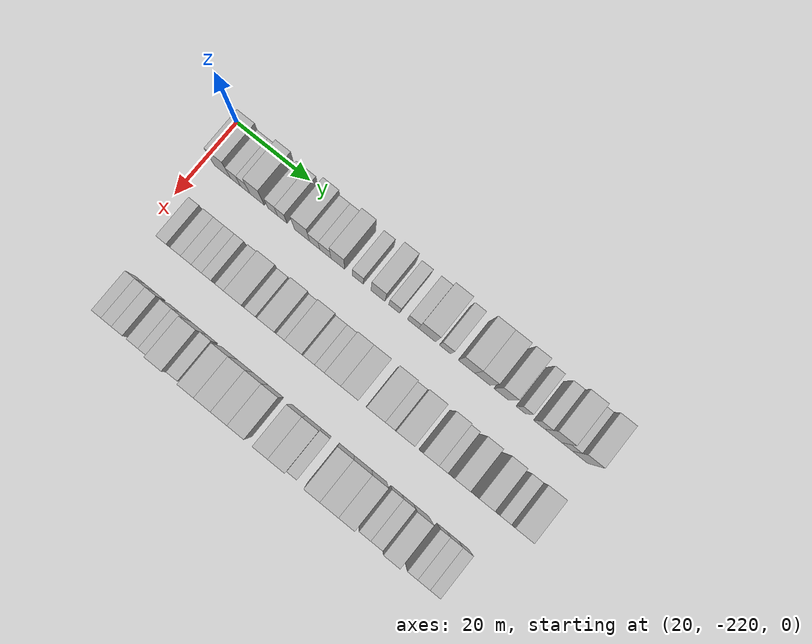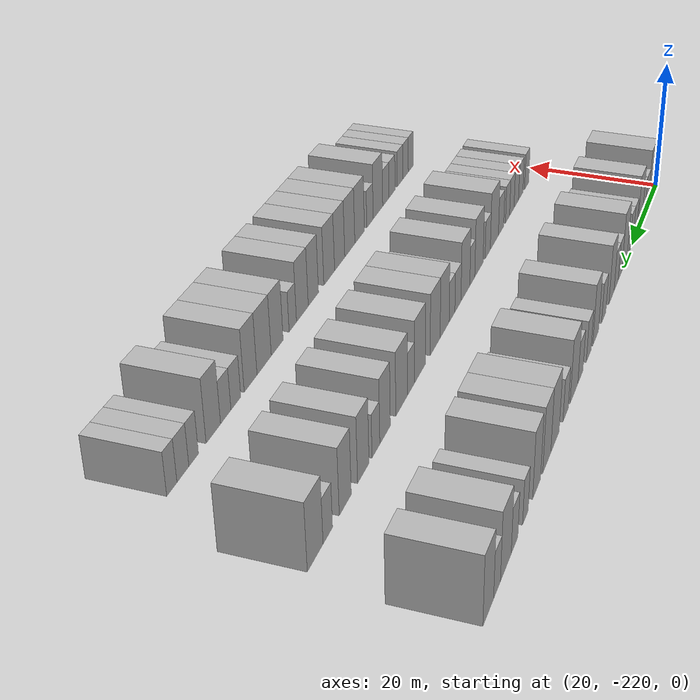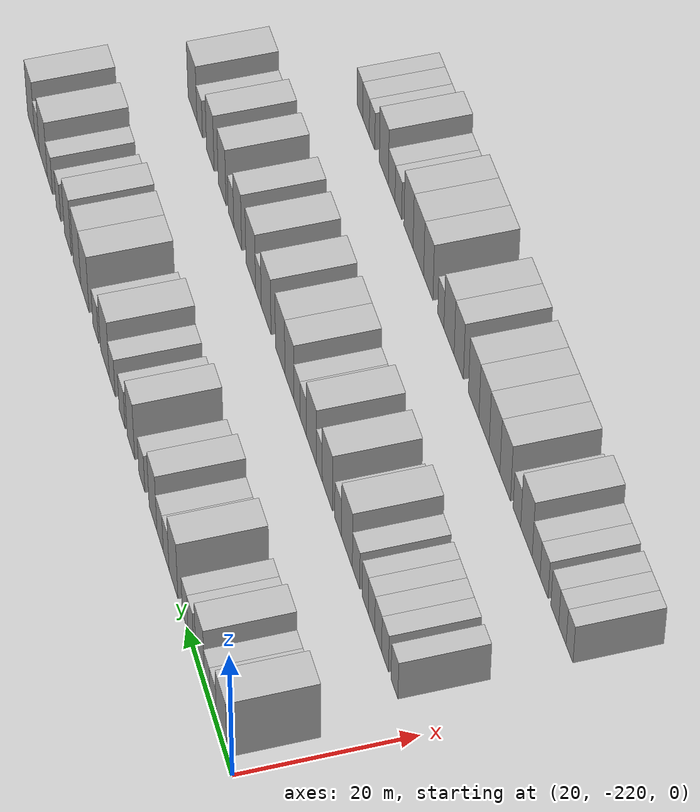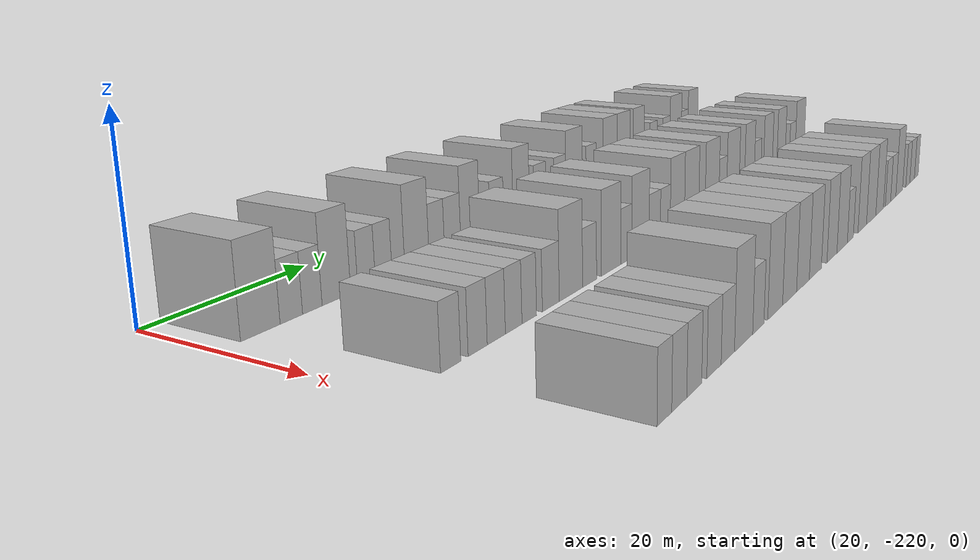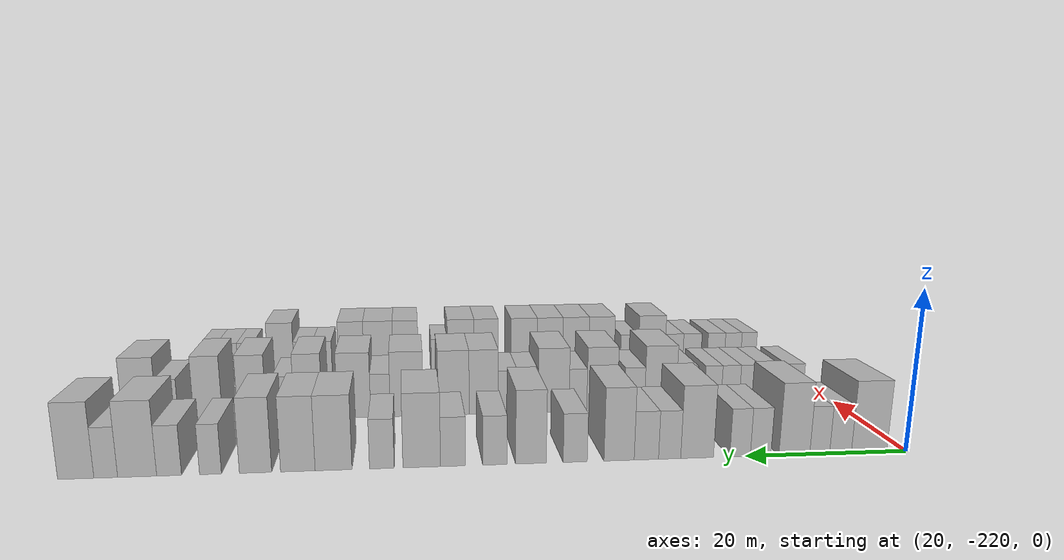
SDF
<sdf version="1.6">
 <world name="default">
  <model name="building_36">
   <static>1</static>
   <pose>25.0000 -215.3749 0 0.000000 0.000000 0.000000</pose>
   <link name="link">
    <pose>0 0 4.50 0 0 0</pose>
    <collision name="collision"><geometry><box><size>10.0000 4.4732 9.0000</size></box></geometry></collision>
    <visual name="visual">
     <cast_shadows>0</cast_shadows>
     <geometry><box><size>10.0000 4.4732 9.0000</size></box></geometry>
     <material>
      <script>
       <uri>model://HANNAS_wall/materials/scripts</uri>
       <uri>model://HANNAS_wall/materials/textures</uri>
       <name>vrc/HANNAS_wall</name>
      </script>
     </material>
    </visual>
   </link>
  </model>
  <model name="building_37">
   <static>1</static>
   <pose>25.0000 -211.7772 0 0.000000 0.000000 0.000000</pose>
   <link name="link">
    <pose>0 0 3.00 0 0 0</pose>
    <collision name="collision"><geometry><box><size>10.0000 2.7222 6.0000</size></box></geometry></collision>
    <visual name="visual">
     <cast_shadows>0</cast_shadows>
     <geometry><box><size>10.0000 2.7222 6.0000</size></box></geometry>
     <material>
      <script>
       <uri>model://HANNAS_wall/materials/scripts</uri>
       <uri>model://HANNAS_wall/materials/textures</uri>
       <name>vrc/HANNAS_wall</name>
      </script>
     </material>
    </visual>
   </link>
  </model>
  <model name="building_38">
   <static>1</static>
   <pose>25.0000 -209.1756 0 0.000000 0.000000 0.000000</pose>
   <link name="link">
    <pose>0 0 3.00 0 0 0</pose>
    <collision name="collision"><geometry><box><size>10.0000 2.4810 6.0000</size></box></geometry></collision>
    <visual name="visual">
     <cast_shadows>0</cast_shadows>
     <geometry><box><size>10.0000 2.4810 6.0000</size></box></geometry>
     <material>
      <script>
       <uri>model://HANNAS_wall/materials/scripts</uri>
       <uri>model://HANNAS_wall/materials/textures</uri>
       <name>vrc/HANNAS_wall</name>
      </script>
     </material>
    </visual>
   </link>
  </model>
  <model name="building_39">
   <static>1</static>
   <pose>25.0000 -206.0133 0 0.000000 0.000000 0.000000</pose>
   <link name="link">
    <pose>0 0 4.50 0 0 0</pose>
    <collision name="collision"><geometry><box><size>10.0000 3.8437 9.0000</size></box></geometry></collision>
    <visual name="visual">
     <cast_shadows>0</cast_shadows>
     <geometry><box><size>10.0000 3.8437 9.0000</size></box></geometry>
     <material>
      <script>
       <uri>model://HANNAS_wall/materials/scripts</uri>
       <uri>model://HANNAS_wall/materials/textures</uri>
       <name>vrc/HANNAS_wall</name>
      </script>
     </material>
    </visual>
   </link>
  </model>
  <model name="building_40">
   <static>1</static>
   <pose>25.0000 -201.8204 0 0.000000 0.000000 0.000000</pose>
   <link name="link">
    <pose>0 0 3.00 0 0 0</pose>
    <collision name="collision"><geometry><box><size>10.0000 2.5420 6.0000</size></box></geometry></collision>
    <visual name="visual">
     <cast_shadows>0</cast_shadows>
     <geometry><box><size>10.0000 2.5420 6.0000</size></box></geometry>
     <material>
      <script>
       <uri>model://HANNAS_wall/materials/scripts</uri>
       <uri>model://HANNAS_wall/materials/textures</uri>
       <name>vrc/HANNAS_wall</name>
      </script>
     </material>
    </visual>
   </link>
  </model>
  <model name="building_41">
   <static>1</static>
   <pose>25.0000 -199.2871 0 0.000000 0.000000 0.000000</pose>
   <link name="link">
    <pose>0 0 3.00 0 0 0</pose>
    <collision name="collision"><geometry><box><size>10.0000 2.5247 6.0000</size></box></geometry></collision>
    <visual name="visual">
     <cast_shadows>0</cast_shadows>
     <geometry><box><size>10.0000 2.5247 6.0000</size></box></geometry>
     <material>
      <script>
       <uri>model://HANNAS_wall/materials/scripts</uri>
       <uri>model://HANNAS_wall/materials/textures</uri>
       <name>vrc/HANNAS_wall</name>
      </script>
     </material>
    </visual>
   </link>
  </model>
  <model name="building_42">
   <static>1</static>
   <pose>25.0000 -194.0223 0 0.000000 0.000000 0.000000</pose>
   <link name="link">
    <pose>0 0 4.50 0 0 0</pose>
    <collision name="collision"><geometry><box><size>10.0000 4.0050 9.0000</size></box></geometry></collision>
    <visual name="visual">
     <cast_shadows>0</cast_shadows>
     <geometry><box><size>10.0000 4.0050 9.0000</size></box></geometry>
     <material>
      <script>
       <uri>model://HANNAS_wall/materials/scripts</uri>
       <uri>model://HANNAS_wall/materials/textures</uri>
       <name>vrc/HANNAS_wall</name>
      </script>
     </material>
    </visual>
   </link>
  </model>
  <model name="building_43">
   <static>1</static>
   <pose>25.0000 -190.6748 0 0.000000 0.000000 0.000000</pose>
   <link name="link">
    <pose>0 0 3.00 0 0 0</pose>
    <collision name="collision"><geometry><box><size>10.0000 2.6900 6.0000</size></box></geometry></collision>
    <visual name="visual">
     <cast_shadows>0</cast_shadows>
     <geometry><box><size>10.0000 2.6900 6.0000</size></box></geometry>
     <material>
      <script>
       <uri>model://HANNAS_wall/materials/scripts</uri>
       <uri>model://HANNAS_wall/materials/textures</uri>
       <name>vrc/HANNAS_wall</name>
      </script>
     </material>
    </visual>
   </link>
  </model>
  <model name="building_44">
   <static>1</static>
   <pose>25.0000 -187.8573 0 0.000000 0.000000 0.000000</pose>
   <link name="link">
    <pose>0 0 3.00 0 0 0</pose>
    <collision name="collision"><geometry><box><size>10.0000 2.9449 6.0000</size></box></geometry></collision>
    <visual name="visual">
     <cast_shadows>0</cast_shadows>
     <geometry><box><size>10.0000 2.9449 6.0000</size></box></geometry>
     <material>
      <script>
       <uri>model://HANNAS_wall/materials/scripts</uri>
       <uri>model://HANNAS_wall/materials/textures</uri>
       <name>vrc/HANNAS_wall</name>
      </script>
     </material>
    </visual>
   </link>
  </model>
  <model name="building_45">
   <static>1</static>
   <pose>25.0000 -184.5670 0 0.000000 0.000000 0.000000</pose>
   <link name="link">
    <pose>0 0 4.50 0 0 0</pose>
    <collision name="collision"><geometry><box><size>10.0000 3.6356 9.0000</size></box></geometry></collision>
    <visual name="visual">
     <cast_shadows>0</cast_shadows>
     <geometry><box><size>10.0000 3.6356 9.0000</size></box></geometry>
     <material>
      <script>
       <uri>model://HANNAS_wall/materials/scripts</uri>
       <uri>model://HANNAS_wall/materials/textures</uri>
       <name>vrc/HANNAS_wall</name>
      </script>
     </material>
    </visual>
   </link>
  </model>
  <model name="building_46">
   <static>1</static>
   <pose>25.0000 -179.3126 0 0.000000 0.000000 0.000000</pose>
   <link name="link">
    <pose>0 0 3.00 0 0 0</pose>
    <collision name="collision"><geometry><box><size>10.0000 2.8732 6.0000</size></box></geometry></collision>
    <visual name="visual">
     <cast_shadows>0</cast_shadows>
     <geometry><box><size>10.0000 2.8732 6.0000</size></box></geometry>
     <material>
      <script>
       <uri>model://HANNAS_wall/materials/scripts</uri>
       <uri>model://HANNAS_wall/materials/textures</uri>
       <name>vrc/HANNAS_wall</name>
      </script>
     </material>
    </visual>
   </link>
  </model>
  <model name="building_47">
   <static>1</static>
   <pose>25.0000 -174.0572 0 0.000000 0.000000 0.000000</pose>
   <link name="link">
    <pose>0 0 4.50 0 0 0</pose>
    <collision name="collision"><geometry><box><size>10.0000 3.6375 9.0000</size></box></geometry></collision>
    <visual name="visual">
     <cast_shadows>0</cast_shadows>
     <geometry><box><size>10.0000 3.6375 9.0000</size></box></geometry>
     <material>
      <script>
       <uri>model://HANNAS_wall/materials/scripts</uri>
       <uri>model://HANNAS_wall/materials/textures</uri>
       <name>vrc/HANNAS_wall</name>
      </script>
     </material>
    </visual>
   </link>
  </model>
  <model name="building_48">
   <static>1</static>
   <pose>25.0000 -169.8067 0 0.000000 0.000000 0.000000</pose>
   <link name="link">
    <pose>0 0 3.00 0 0 0</pose>
    <collision name="collision"><geometry><box><size>10.0000 2.8636 6.0000</size></box></geometry></collision>
    <visual name="visual">
     <cast_shadows>0</cast_shadows>
     <geometry><box><size>10.0000 2.8636 6.0000</size></box></geometry>
     <material>
      <script>
       <uri>model://HANNAS_wall/materials/scripts</uri>
       <uri>model://HANNAS_wall/materials/textures</uri>
       <name>vrc/HANNAS_wall</name>
      </script>
     </material>
    </visual>
   </link>
  </model>
  <model name="building_49">
   <static>1</static>
   <pose>25.0000 -164.9101 0 0.000000 0.000000 0.000000</pose>
   <link name="link">
    <pose>0 0 3.00 0 0 0</pose>
    <collision name="collision"><geometry><box><size>10.0000 2.9296 6.0000</size></box></geometry></collision>
    <visual name="visual">
     <cast_shadows>0</cast_shadows>
     <geometry><box><size>10.0000 2.9296 6.0000</size></box></geometry>
     <material>
      <script>
       <uri>model://HANNAS_wall/materials/scripts</uri>
       <uri>model://HANNAS_wall/materials/textures</uri>
       <name>vrc/HANNAS_wall</name>
      </script>
     </material>
    </visual>
   </link>
  </model>
  <model name="building_50">
   <static>1</static>
   <pose>25.0000 -161.2648 0 0.000000 0.000000 0.000000</pose>
   <link name="link">
    <pose>0 0 4.50 0 0 0</pose>
    <collision name="collision"><geometry><box><size>10.0000 4.3609 9.0000</size></box></geometry></collision>
    <visual name="visual">
     <cast_shadows>0</cast_shadows>
     <geometry><box><size>10.0000 4.3609 9.0000</size></box></geometry>
     <material>
      <script>
       <uri>model://HANNAS_wall/materials/scripts</uri>
       <uri>model://HANNAS_wall/materials/textures</uri>
       <name>vrc/HANNAS_wall</name>
      </script>
     </material>
    </visual>
   </link>
  </model>
  <model name="building_51">
   <static>1</static>
   <pose>25.0000 -156.6595 0 0.000000 0.000000 0.000000</pose>
   <link name="link">
    <pose>0 0 3.00 0 0 0</pose>
    <collision name="collision"><geometry><box><size>10.0000 2.8498 6.0000</size></box></geometry></collision>
    <visual name="visual">
     <cast_shadows>0</cast_shadows>
     <geometry><box><size>10.0000 2.8498 6.0000</size></box></geometry>
     <material>
      <script>
       <uri>model://HANNAS_wall/materials/scripts</uri>
       <uri>model://HANNAS_wall/materials/textures</uri>
       <name>vrc/HANNAS_wall</name>
      </script>
     </material>
    </visual>
   </link>
  </model>
  <model name="building_52">
   <static>1</static>
   <pose>25.0000 -151.1320 0 0.000000 0.000000 0.000000</pose>
   <link name="link">
    <pose>0 0 4.50 0 0 0</pose>
    <collision name="collision"><geometry><box><size>10.0000 4.2051 9.0000</size></box></geometry></collision>
    <visual name="visual">
     <cast_shadows>0</cast_shadows>
     <geometry><box><size>10.0000 4.2051 9.0000</size></box></geometry>
     <material>
      <script>
       <uri>model://HANNAS_wall/materials/scripts</uri>
       <uri>model://HANNAS_wall/materials/textures</uri>
       <name>vrc/HANNAS_wall</name>
      </script>
     </material>
    </visual>
   </link>
  </model>
  <model name="building_53">
   <static>1</static>
   <pose>25.0000 -147.0693 0 0.000000 0.000000 0.000000</pose>
   <link name="link">
    <pose>0 0 4.50 0 0 0</pose>
    <collision name="collision"><geometry><box><size>10.0000 3.9203 9.0000</size></box></geometry></collision>
    <visual name="visual">
     <cast_shadows>0</cast_shadows>
     <geometry><box><size>10.0000 3.9203 9.0000</size></box></geometry>
     <material>
      <script>
       <uri>model://HANNAS_wall/materials/scripts</uri>
       <uri>model://HANNAS_wall/materials/textures</uri>
       <name>vrc/HANNAS_wall</name>
      </script>
     </material>
    </visual>
   </link>
  </model>
  <model name="building_54">
   <static>1</static>
   <pose>25.0000 -142.2915 0 0.000000 0.000000 0.000000</pose>
   <link name="link">
    <pose>0 0 4.50 0 0 0</pose>
    <collision name="collision"><geometry><box><size>10.0000 3.6353 9.0000</size></box></geometry></collision>
    <visual name="visual">
     <cast_shadows>0</cast_shadows>
     <geometry><box><size>10.0000 3.6353 9.0000</size></box></geometry>
     <material>
      <script>
       <uri>model://HANNAS_wall/materials/scripts</uri>
       <uri>model://HANNAS_wall/materials/textures</uri>
       <name>vrc/HANNAS_wall</name>
      </script>
     </material>
    </visual>
   </link>
  </model>
  <model name="building_55">
   <static>1</static>
   <pose>25.0000 -137.2523 0 0.000000 0.000000 0.000000</pose>
   <link name="link">
    <pose>0 0 3.00 0 0 0</pose>
    <collision name="collision"><geometry><box><size>10.0000 2.4430 6.0000</size></box></geometry></collision>
    <visual name="visual">
     <cast_shadows>0</cast_shadows>
     <geometry><box><size>10.0000 2.4430 6.0000</size></box></geometry>
     <material>
      <script>
       <uri>model://HANNAS_wall/materials/scripts</uri>
       <uri>model://HANNAS_wall/materials/textures</uri>
       <name>vrc/HANNAS_wall</name>
      </script>
     </material>
    </visual>
   </link>
  </model>
  <model name="building_56">
   <static>1</static>
   <pose>25.0000 -132.6540 0 0.000000 0.000000 0.000000</pose>
   <link name="link">
    <pose>0 0 3.00 0 0 0</pose>
    <collision name="collision"><geometry><box><size>10.0000 2.7537 6.0000</size></box></geometry></collision>
    <visual name="visual">
     <cast_shadows>0</cast_shadows>
     <geometry><box><size>10.0000 2.7537 6.0000</size></box></geometry>
     <material>
      <script>
       <uri>model://HANNAS_wall/materials/scripts</uri>
       <uri>model://HANNAS_wall/materials/textures</uri>
       <name>vrc/HANNAS_wall</name>
      </script>
     </material>
    </visual>
   </link>
  </model>
  <model name="building_57">
   <static>1</static>
   <pose>25.0000 -129.1318 0 0.000000 0.000000 0.000000</pose>
   <link name="link">
    <pose>0 0 4.50 0 0 0</pose>
    <collision name="collision"><geometry><box><size>10.0000 4.2906 9.0000</size></box></geometry></collision>
    <visual name="visual">
     <cast_shadows>0</cast_shadows>
     <geometry><box><size>10.0000 4.2906 9.0000</size></box></geometry>
     <material>
      <script>
       <uri>model://HANNAS_wall/materials/scripts</uri>
       <uri>model://HANNAS_wall/materials/textures</uri>
       <name>vrc/HANNAS_wall</name>
      </script>
     </material>
    </visual>
   </link>
  </model>
  <model name="building_58">
   <static>1</static>
   <pose>25.0000 -125.6862 0 0.000000 0.000000 0.000000</pose>
   <link name="link">
    <pose>0 0 3.00 0 0 0</pose>
    <collision name="collision"><geometry><box><size>10.0000 2.6005 6.0000</size></box></geometry></collision>
    <visual name="visual">
     <cast_shadows>0</cast_shadows>
     <geometry><box><size>10.0000 2.6005 6.0000</size></box></geometry>
     <material>
      <script>
       <uri>model://HANNAS_wall/materials/scripts</uri>
       <uri>model://HANNAS_wall/materials/textures</uri>
       <name>vrc/HANNAS_wall</name>
      </script>
     </material>
    </visual>
   </link>
  </model>
  <model name="building_59">
   <static>1</static>
   <pose>25.0000 -122.4112 0 0.000000 0.000000 0.000000</pose>
   <link name="link">
    <pose>0 0 4.50 0 0 0</pose>
    <collision name="collision"><geometry><box><size>10.0000 3.9496 9.0000</size></box></geometry></collision>
    <visual name="visual">
     <cast_shadows>0</cast_shadows>
     <geometry><box><size>10.0000 3.9496 9.0000</size></box></geometry>
     <material>
      <script>
       <uri>model://HANNAS_wall/materials/scripts</uri>
       <uri>model://HANNAS_wall/materials/textures</uri>
       <name>vrc/HANNAS_wall</name>
      </script>
     </material>
    </visual>
   </link>
  </model>
  <model name="building_209">
   <static>1</static>
   <pose>44.0000 -213.5631 0 0.000000 0.000000 0.000000</pose>
   <link name="link">
    <pose>0 0 3.00 0 0 0</pose>
    <collision name="collision"><geometry><box><size>10.0000 2.6758 6.0000</size></box></geometry></collision>
    <visual name="visual">
     <cast_shadows>0</cast_shadows>
     <geometry><box><size>10.0000 2.6758 6.0000</size></box></geometry>
     <material>
      <script>
       <uri>model://HANNAS_wall/materials/scripts</uri>
       <uri>model://HANNAS_wall/materials/textures</uri>
       <name>vrc/HANNAS_wall</name>
      </script>
     </material>
    </visual>
   </link>
  </model>
  <model name="building_210">
   <static>1</static>
   <pose>44.0000 -209.8679 0 0.000000 0.000000 0.000000</pose>
   <link name="link">
    <pose>0 0 3.00 0 0 0</pose>
    <collision name="collision"><geometry><box><size>10.0000 2.7146 6.0000</size></box></geometry></collision>
    <visual name="visual">
     <cast_shadows>0</cast_shadows>
     <geometry><box><size>10.0000 2.7146 6.0000</size></box></geometry>
     <material>
      <script>
       <uri>model://HANNAS_wall/materials/scripts</uri>
       <uri>model://HANNAS_wall/materials/textures</uri>
       <name>vrc/HANNAS_wall</name>
      </script>
     </material>
    </visual>
   </link>
  </model>
  <model name="building_211">
   <static>1</static>
   <pose>44.0000 -207.1480 0 0.000000 0.000000 0.000000</pose>
   <link name="link">
    <pose>0 0 3.00 0 0 0</pose>
    <collision name="collision"><geometry><box><size>10.0000 2.7251 6.0000</size></box></geometry></collision>
    <visual name="visual">
     <cast_shadows>0</cast_shadows>
     <geometry><box><size>10.0000 2.7251 6.0000</size></box></geometry>
     <material>
      <script>
       <uri>model://HANNAS_wall/materials/scripts</uri>
       <uri>model://HANNAS_wall/materials/textures</uri>
       <name>vrc/HANNAS_wall</name>
      </script>
     </material>
    </visual>
   </link>
  </model>
  <model name="building_212">
   <static>1</static>
   <pose>44.0000 -204.4742 0 0.000000 0.000000 0.000000</pose>
   <link name="link">
    <pose>0 0 3.00 0 0 0</pose>
    <collision name="collision"><geometry><box><size>10.0000 2.6224 6.0000</size></box></geometry></collision>
    <visual name="visual">
     <cast_shadows>0</cast_shadows>
     <geometry><box><size>10.0000 2.6224 6.0000</size></box></geometry>
     <material>
      <script>
       <uri>model://HANNAS_wall/materials/scripts</uri>
       <uri>model://HANNAS_wall/materials/textures</uri>
       <name>vrc/HANNAS_wall</name>
      </script>
     </material>
    </visual>
   </link>
  </model>
  <model name="building_213">
   <static>1</static>
   <pose>44.0000 -201.9571 0 0.000000 0.000000 0.000000</pose>
   <link name="link">
    <pose>0 0 3.00 0 0 0</pose>
    <collision name="collision"><geometry><box><size>10.0000 2.4119 6.0000</size></box></geometry></collision>
    <visual name="visual">
     <cast_shadows>0</cast_shadows>
     <geometry><box><size>10.0000 2.4119 6.0000</size></box></geometry>
     <material>
      <script>
       <uri>model://HANNAS_wall/materials/scripts</uri>
       <uri>model://HANNAS_wall/materials/textures</uri>
       <name>vrc/HANNAS_wall</name>
      </script>
     </material>
    </visual>
   </link>
  </model>
  <model name="building_214">
   <static>1</static>
   <pose>44.0000 -198.2516 0 0.000000 0.000000 0.000000</pose>
   <link name="link">
    <pose>0 0 3.00 0 0 0</pose>
    <collision name="collision"><geometry><box><size>10.0000 2.9992 6.0000</size></box></geometry></collision>
    <visual name="visual">
     <cast_shadows>0</cast_shadows>
     <geometry><box><size>10.0000 2.9992 6.0000</size></box></geometry>
     <material>
      <script>
       <uri>model://HANNAS_wall/materials/scripts</uri>
       <uri>model://HANNAS_wall/materials/textures</uri>
       <name>vrc/HANNAS_wall</name>
      </script>
     </material>
    </visual>
   </link>
  </model>
  <model name="building_215">
   <static>1</static>
   <pose>44.0000 -194.5336 0 0.000000 0.000000 0.000000</pose>
   <link name="link">
    <pose>0 0 4.50 0 0 0</pose>
    <collision name="collision"><geometry><box><size>10.0000 4.4368 9.0000</size></box></geometry></collision>
    <visual name="visual">
     <cast_shadows>0</cast_shadows>
     <geometry><box><size>10.0000 4.4368 9.0000</size></box></geometry>
     <material>
      <script>
       <uri>model://HANNAS_wall/materials/scripts</uri>
       <uri>model://HANNAS_wall/materials/textures</uri>
       <name>vrc/HANNAS_wall</name>
      </script>
     </material>
    </visual>
   </link>
  </model>
  <model name="building_216">
   <static>1</static>
   <pose>44.0000 -190.9087 0 0.000000 0.000000 0.000000</pose>
   <link name="link">
    <pose>0 0 3.00 0 0 0</pose>
    <collision name="collision"><geometry><box><size>10.0000 2.8130 6.0000</size></box></geometry></collision>
    <visual name="visual">
     <cast_shadows>0</cast_shadows>
     <geometry><box><size>10.0000 2.8130 6.0000</size></box></geometry>
     <material>
      <script>
       <uri>model://HANNAS_wall/materials/scripts</uri>
       <uri>model://HANNAS_wall/materials/textures</uri>
       <name>vrc/HANNAS_wall</name>
      </script>
     </material>
    </visual>
   </link>
  </model>
  <model name="building_217">
   <static>1</static>
   <pose>44.0000 -186.3703 0 0.000000 0.000000 0.000000</pose>
   <link name="link">
    <pose>0 0 4.50 0 0 0</pose>
    <collision name="collision"><geometry><box><size>10.0000 4.2636 9.0000</size></box></geometry></collision>
    <visual name="visual">
     <cast_shadows>0</cast_shadows>
     <geometry><box><size>10.0000 4.2636 9.0000</size></box></geometry>
     <material>
      <script>
       <uri>model://HANNAS_wall/materials/scripts</uri>
       <uri>model://HANNAS_wall/materials/textures</uri>
       <name>vrc/HANNAS_wall</name>
      </script>
     </material>
    </visual>
   </link>
  </model>
  <model name="building_218">
   <static>1</static>
   <pose>44.0000 -183.0066 0 0.000000 0.000000 0.000000</pose>
   <link name="link">
    <pose>0 0 3.00 0 0 0</pose>
    <collision name="collision"><geometry><box><size>10.0000 2.4639 6.0000</size></box></geometry></collision>
    <visual name="visual">
     <cast_shadows>0</cast_shadows>
     <geometry><box><size>10.0000 2.4639 6.0000</size></box></geometry>
     <material>
      <script>
       <uri>model://HANNAS_wall/materials/scripts</uri>
       <uri>model://HANNAS_wall/materials/textures</uri>
       <name>vrc/HANNAS_wall</name>
      </script>
     </material>
    </visual>
   </link>
  </model>
  <model name="building_219">
   <static>1</static>
   <pose>44.0000 -179.6432 0 0.000000 0.000000 0.000000</pose>
   <link name="link">
    <pose>0 0 4.50 0 0 0</pose>
    <collision name="collision"><geometry><box><size>10.0000 4.2630 9.0000</size></box></geometry></collision>
    <visual name="visual">
     <cast_shadows>0</cast_shadows>
     <geometry><box><size>10.0000 4.2630 9.0000</size></box></geometry>
     <material>
      <script>
       <uri>model://HANNAS_wall/materials/scripts</uri>
       <uri>model://HANNAS_wall/materials/textures</uri>
       <name>vrc/HANNAS_wall</name>
      </script>
     </material>
    </visual>
   </link>
  </model>
  <model name="building_220">
   <static>1</static>
   <pose>44.0000 -176.0857 0 0.000000 0.000000 0.000000</pose>
   <link name="link">
    <pose>0 0 3.00 0 0 0</pose>
    <collision name="collision"><geometry><box><size>10.0000 2.8519 6.0000</size></box></geometry></collision>
    <visual name="visual">
     <cast_shadows>0</cast_shadows>
     <geometry><box><size>10.0000 2.8519 6.0000</size></box></geometry>
     <material>
      <script>
       <uri>model://HANNAS_wall/materials/scripts</uri>
       <uri>model://HANNAS_wall/materials/textures</uri>
       <name>vrc/HANNAS_wall</name>
      </script>
     </material>
    </visual>
   </link>
  </model>
  <model name="building_221">
   <static>1</static>
   <pose>44.0000 -173.3425 0 0.000000 0.000000 0.000000</pose>
   <link name="link">
    <pose>0 0 3.00 0 0 0</pose>
    <collision name="collision"><geometry><box><size>10.0000 2.6345 6.0000</size></box></geometry></collision>
    <visual name="visual">
     <cast_shadows>0</cast_shadows>
     <geometry><box><size>10.0000 2.6345 6.0000</size></box></geometry>
     <material>
      <script>
       <uri>model://HANNAS_wall/materials/scripts</uri>
       <uri>model://HANNAS_wall/materials/textures</uri>
       <name>vrc/HANNAS_wall</name>
      </script>
     </material>
    </visual>
   </link>
  </model>
  <model name="building_222">
   <static>1</static>
   <pose>44.0000 -170.0363 0 0.000000 0.000000 0.000000</pose>
   <link name="link">
    <pose>0 0 4.50 0 0 0</pose>
    <collision name="collision"><geometry><box><size>10.0000 3.9780 9.0000</size></box></geometry></collision>
    <visual name="visual">
     <cast_shadows>0</cast_shadows>
     <geometry><box><size>10.0000 3.9780 9.0000</size></box></geometry>
     <material>
      <script>
       <uri>model://HANNAS_wall/materials/scripts</uri>
       <uri>model://HANNAS_wall/materials/textures</uri>
       <name>vrc/HANNAS_wall</name>
      </script>
     </material>
    </visual>
   </link>
  </model>
  <model name="building_223">
   <static>1</static>
   <pose>44.0000 -165.9330 0 0.000000 0.000000 0.000000</pose>
   <link name="link">
    <pose>0 0 4.50 0 0 0</pose>
    <collision name="collision"><geometry><box><size>10.0000 4.2286 9.0000</size></box></geometry></collision>
    <visual name="visual">
     <cast_shadows>0</cast_shadows>
     <geometry><box><size>10.0000 4.2286 9.0000</size></box></geometry>
     <material>
      <script>
       <uri>model://HANNAS_wall/materials/scripts</uri>
       <uri>model://HANNAS_wall/materials/textures</uri>
       <name>vrc/HANNAS_wall</name>
      </script>
     </material>
    </visual>
   </link>
  </model>
  <model name="building_224">
   <static>1</static>
   <pose>44.0000 -159.5950 0 0.000000 0.000000 0.000000</pose>
   <link name="link">
    <pose>0 0 4.50 0 0 0</pose>
    <collision name="collision"><geometry><box><size>10.0000 4.4475 9.0000</size></box></geometry></collision>
    <visual name="visual">
     <cast_shadows>0</cast_shadows>
     <geometry><box><size>10.0000 4.4475 9.0000</size></box></geometry>
     <material>
      <script>
       <uri>model://HANNAS_wall/materials/scripts</uri>
       <uri>model://HANNAS_wall/materials/textures</uri>
       <name>vrc/HANNAS_wall</name>
      </script>
     </material>
    </visual>
   </link>
  </model>
  <model name="building_225">
   <static>1</static>
   <pose>44.0000 -156.0566 0 0.000000 0.000000 0.000000</pose>
   <link name="link">
    <pose>0 0 3.00 0 0 0</pose>
    <collision name="collision"><geometry><box><size>10.0000 2.6292 6.0000</size></box></geometry></collision>
    <visual name="visual">
     <cast_shadows>0</cast_shadows>
     <geometry><box><size>10.0000 2.6292 6.0000</size></box></geometry>
     <material>
      <script>
       <uri>model://HANNAS_wall/materials/scripts</uri>
       <uri>model://HANNAS_wall/materials/textures</uri>
       <name>vrc/HANNAS_wall</name>
      </script>
     </material>
    </visual>
   </link>
  </model>
  <model name="building_226">
   <static>1</static>
   <pose>44.0000 -152.5229 0 0.000000 0.000000 0.000000</pose>
   <link name="link">
    <pose>0 0 4.50 0 0 0</pose>
    <collision name="collision"><geometry><box><size>10.0000 4.4383 9.0000</size></box></geometry></collision>
    <visual name="visual">
     <cast_shadows>0</cast_shadows>
     <geometry><box><size>10.0000 4.4383 9.0000</size></box></geometry>
     <material>
      <script>
       <uri>model://HANNAS_wall/materials/scripts</uri>
       <uri>model://HANNAS_wall/materials/textures</uri>
       <name>vrc/HANNAS_wall</name>
      </script>
     </material>
    </visual>
   </link>
  </model>
  <model name="building_227">
   <static>1</static>
   <pose>44.0000 -146.4505 0 0.000000 0.000000 0.000000</pose>
   <link name="link">
    <pose>0 0 4.50 0 0 0</pose>
    <collision name="collision"><geometry><box><size>10.0000 3.7065 9.0000</size></box></geometry></collision>
    <visual name="visual">
     <cast_shadows>0</cast_shadows>
     <geometry><box><size>10.0000 3.7065 9.0000</size></box></geometry>
     <material>
      <script>
       <uri>model://HANNAS_wall/materials/scripts</uri>
       <uri>model://HANNAS_wall/materials/textures</uri>
       <name>vrc/HANNAS_wall</name>
      </script>
     </material>
    </visual>
   </link>
  </model>
  <model name="building_228">
   <static>1</static>
   <pose>44.0000 -143.2576 0 0.000000 0.000000 0.000000</pose>
   <link name="link">
    <pose>0 0 3.00 0 0 0</pose>
    <collision name="collision"><geometry><box><size>10.0000 2.6794 6.0000</size></box></geometry></collision>
    <visual name="visual">
     <cast_shadows>0</cast_shadows>
     <geometry><box><size>10.0000 2.6794 6.0000</size></box></geometry>
     <material>
      <script>
       <uri>model://HANNAS_wall/materials/scripts</uri>
       <uri>model://HANNAS_wall/materials/textures</uri>
       <name>vrc/HANNAS_wall</name>
      </script>
     </material>
    </visual>
   </link>
  </model>
  <model name="building_229">
   <static>1</static>
   <pose>44.0000 -139.0479 0 0.000000 0.000000 0.000000</pose>
   <link name="link">
    <pose>0 0 4.50 0 0 0</pose>
    <collision name="collision"><geometry><box><size>10.0000 3.7401 9.0000</size></box></geometry></collision>
    <visual name="visual">
     <cast_shadows>0</cast_shadows>
     <geometry><box><size>10.0000 3.7401 9.0000</size></box></geometry>
     <material>
      <script>
       <uri>model://HANNAS_wall/materials/scripts</uri>
       <uri>model://HANNAS_wall/materials/textures</uri>
       <name>vrc/HANNAS_wall</name>
      </script>
     </material>
    </visual>
   </link>
  </model>
  <model name="building_230">
   <static>1</static>
   <pose>44.0000 -133.3259 0 0.000000 0.000000 0.000000</pose>
   <link name="link">
    <pose>0 0 4.50 0 0 0</pose>
    <collision name="collision"><geometry><box><size>10.0000 3.7039 9.0000</size></box></geometry></collision>
    <visual name="visual">
     <cast_shadows>0</cast_shadows>
     <geometry><box><size>10.0000 3.7039 9.0000</size></box></geometry>
     <material>
      <script>
       <uri>model://HANNAS_wall/materials/scripts</uri>
       <uri>model://HANNAS_wall/materials/textures</uri>
       <name>vrc/HANNAS_wall</name>
      </script>
     </material>
    </visual>
   </link>
  </model>
  <model name="building_231">
   <static>1</static>
   <pose>44.0000 -128.1013 0 0.000000 0.000000 0.000000</pose>
   <link name="link">
    <pose>0 0 3.00 0 0 0</pose>
    <collision name="collision"><geometry><box><size>10.0000 2.7454 6.0000</size></box></geometry></collision>
    <visual name="visual">
     <cast_shadows>0</cast_shadows>
     <geometry><box><size>10.0000 2.7454 6.0000</size></box></geometry>
     <material>
      <script>
       <uri>model://HANNAS_wall/materials/scripts</uri>
       <uri>model://HANNAS_wall/materials/textures</uri>
       <name>vrc/HANNAS_wall</name>
      </script>
     </material>
    </visual>
   </link>
  </model>
  <model name="building_232">
   <static>1</static>
   <pose>44.0000 -124.5206 0 0.000000 0.000000 0.000000</pose>
   <link name="link">
    <pose>0 0 4.50 0 0 0</pose>
    <collision name="collision"><geometry><box><size>10.0000 4.4160 9.0000</size></box></geometry></collision>
    <visual name="visual">
     <cast_shadows>0</cast_shadows>
     <geometry><box><size>10.0000 4.4160 9.0000</size></box></geometry>
     <material>
      <script>
       <uri>model://HANNAS_wall/materials/scripts</uri>
       <uri>model://HANNAS_wall/materials/textures</uri>
       <name>vrc/HANNAS_wall</name>
      </script>
     </material>
    </visual>
   </link>
  </model>
  <model name="building_383">
   <static>1</static>
   <pose>63.0000 -213.8146 0 0.000000 0.000000 0.000000</pose>
   <link name="link">
    <pose>0 0 3.00 0 0 0</pose>
    <collision name="collision"><geometry><box><size>10.0000 2.4592 6.0000</size></box></geometry></collision>
    <visual name="visual">
     <cast_shadows>0</cast_shadows>
     <geometry><box><size>10.0000 2.4592 6.0000</size></box></geometry>
     <material>
      <script>
       <uri>model://HANNAS_wall/materials/scripts</uri>
       <uri>model://HANNAS_wall/materials/textures</uri>
       <name>vrc/HANNAS_wall</name>
      </script>
     </material>
    </visual>
   </link>
  </model>
  <model name="building_384">
   <static>1</static>
   <pose>63.0000 -211.2508 0 0.000000 0.000000 0.000000</pose>
   <link name="link">
    <pose>0 0 3.00 0 0 0</pose>
    <collision name="collision"><geometry><box><size>10.0000 2.6684 6.0000</size></box></geometry></collision>
    <visual name="visual">
     <cast_shadows>0</cast_shadows>
     <geometry><box><size>10.0000 2.6684 6.0000</size></box></geometry>
     <material>
      <script>
       <uri>model://HANNAS_wall/materials/scripts</uri>
       <uri>model://HANNAS_wall/materials/textures</uri>
       <name>vrc/HANNAS_wall</name>
      </script>
     </material>
    </visual>
   </link>
  </model>
  <model name="building_385">
   <static>1</static>
   <pose>63.0000 -208.5079 0 0.000000 0.000000 0.000000</pose>
   <link name="link">
    <pose>0 0 3.00 0 0 0</pose>
    <collision name="collision"><geometry><box><size>10.0000 2.8173 6.0000</size></box></geometry></collision>
    <visual name="visual">
     <cast_shadows>0</cast_shadows>
     <geometry><box><size>10.0000 2.8173 6.0000</size></box></geometry>
     <material>
      <script>
       <uri>model://HANNAS_wall/materials/scripts</uri>
       <uri>model://HANNAS_wall/materials/textures</uri>
       <name>vrc/HANNAS_wall</name>
      </script>
     </material>
    </visual>
   </link>
  </model>
  <model name="building_386">
   <static>1</static>
   <pose>63.0000 -204.6285 0 0.000000 0.000000 0.000000</pose>
   <link name="link">
    <pose>0 0 3.00 0 0 0</pose>
    <collision name="collision"><geometry><box><size>10.0000 2.9414 6.0000</size></box></geometry></collision>
    <visual name="visual">
     <cast_shadows>0</cast_shadows>
     <geometry><box><size>10.0000 2.9414 6.0000</size></box></geometry>
     <material>
      <script>
       <uri>model://HANNAS_wall/materials/scripts</uri>
       <uri>model://HANNAS_wall/materials/textures</uri>
       <name>vrc/HANNAS_wall</name>
      </script>
     </material>
    </visual>
   </link>
  </model>
  <model name="building_387">
   <static>1</static>
   <pose>63.0000 -201.7023 0 0.000000 0.000000 0.000000</pose>
   <link name="link">
    <pose>0 0 3.00 0 0 0</pose>
    <collision name="collision"><geometry><box><size>10.0000 2.9110 6.0000</size></box></geometry></collision>
    <visual name="visual">
     <cast_shadows>0</cast_shadows>
     <geometry><box><size>10.0000 2.9110 6.0000</size></box></geometry>
     <material>
      <script>
       <uri>model://HANNAS_wall/materials/scripts</uri>
       <uri>model://HANNAS_wall/materials/textures</uri>
       <name>vrc/HANNAS_wall</name>
      </script>
     </material>
    </visual>
   </link>
  </model>
  <model name="building_388">
   <static>1</static>
   <pose>63.0000 -198.1061 0 0.000000 0.000000 0.000000</pose>
   <link name="link">
    <pose>0 0 4.50 0 0 0</pose>
    <collision name="collision"><geometry><box><size>10.0000 4.2814 9.0000</size></box></geometry></collision>
    <visual name="visual">
     <cast_shadows>0</cast_shadows>
     <geometry><box><size>10.0000 4.2814 9.0000</size></box></geometry>
     <material>
      <script>
       <uri>model://HANNAS_wall/materials/scripts</uri>
       <uri>model://HANNAS_wall/materials/textures</uri>
       <name>vrc/HANNAS_wall</name>
      </script>
     </material>
    </visual>
   </link>
  </model>
  <model name="building_389">
   <static>1</static>
   <pose>63.0000 -194.5460 0 0.000000 0.000000 0.000000</pose>
   <link name="link">
    <pose>0 0 3.00 0 0 0</pose>
    <collision name="collision"><geometry><box><size>10.0000 2.8389 6.0000</size></box></geometry></collision>
    <visual name="visual">
     <cast_shadows>0</cast_shadows>
     <geometry><box><size>10.0000 2.8389 6.0000</size></box></geometry>
     <material>
      <script>
       <uri>model://HANNAS_wall/materials/scripts</uri>
       <uri>model://HANNAS_wall/materials/textures</uri>
       <name>vrc/HANNAS_wall</name>
      </script>
     </material>
    </visual>
   </link>
  </model>
  <model name="building_390">
   <static>1</static>
   <pose>63.0000 -190.0946 0 0.000000 0.000000 0.000000</pose>
   <link name="link">
    <pose>0 0 4.50 0 0 0</pose>
    <collision name="collision"><geometry><box><size>10.0000 4.0640 9.0000</size></box></geometry></collision>
    <visual name="visual">
     <cast_shadows>0</cast_shadows>
     <geometry><box><size>10.0000 4.0640 9.0000</size></box></geometry>
     <material>
      <script>
       <uri>model://HANNAS_wall/materials/scripts</uri>
       <uri>model://HANNAS_wall/materials/textures</uri>
       <name>vrc/HANNAS_wall</name>
      </script>
     </material>
    </visual>
   </link>
  </model>
  <model name="building_391">
   <static>1</static>
   <pose>63.0000 -185.9994 0 0.000000 0.000000 0.000000</pose>
   <link name="link">
    <pose>0 0 4.50 0 0 0</pose>
    <collision name="collision"><geometry><box><size>10.0000 4.1264 9.0000</size></box></geometry></collision>
    <visual name="visual">
     <cast_shadows>0</cast_shadows>
     <geometry><box><size>10.0000 4.1264 9.0000</size></box></geometry>
     <material>
      <script>
       <uri>model://HANNAS_wall/materials/scripts</uri>
       <uri>model://HANNAS_wall/materials/textures</uri>
       <name>vrc/HANNAS_wall</name>
      </script>
     </material>
    </visual>
   </link>
  </model>
  <model name="building_392">
   <static>1</static>
   <pose>63.0000 -181.9261 0 0.000000 0.000000 0.000000</pose>
   <link name="link">
    <pose>0 0 4.50 0 0 0</pose>
    <collision name="collision"><geometry><box><size>10.0000 4.0202 9.0000</size></box></geometry></collision>
    <visual name="visual">
     <cast_shadows>0</cast_shadows>
     <geometry><box><size>10.0000 4.0202 9.0000</size></box></geometry>
     <material>
      <script>
       <uri>model://HANNAS_wall/materials/scripts</uri>
       <uri>model://HANNAS_wall/materials/textures</uri>
       <name>vrc/HANNAS_wall</name>
      </script>
     </material>
    </visual>
   </link>
  </model>
  <model name="building_393">
   <static>1</static>
   <pose>63.0000 -177.8594 0 0.000000 0.000000 0.000000</pose>
   <link name="link">
    <pose>0 0 4.50 0 0 0</pose>
    <collision name="collision"><geometry><box><size>10.0000 4.1131 9.0000</size></box></geometry></collision>
    <visual name="visual">
     <cast_shadows>0</cast_shadows>
     <geometry><box><size>10.0000 4.1131 9.0000</size></box></geometry>
     <material>
      <script>
       <uri>model://HANNAS_wall/materials/scripts</uri>
       <uri>model://HANNAS_wall/materials/textures</uri>
       <name>vrc/HANNAS_wall</name>
      </script>
     </material>
    </visual>
   </link>
  </model>
  <model name="building_394">
   <static>1</static>
   <pose>63.0000 -171.9413 0 0.000000 0.000000 0.000000</pose>
   <link name="link">
    <pose>0 0 4.50 0 0 0</pose>
    <collision name="collision"><geometry><box><size>10.0000 3.7230 9.0000</size></box></geometry></collision>
    <visual name="visual">
     <cast_shadows>0</cast_shadows>
     <geometry><box><size>10.0000 3.7230 9.0000</size></box></geometry>
     <material>
      <script>
       <uri>model://HANNAS_wall/materials/scripts</uri>
       <uri>model://HANNAS_wall/materials/textures</uri>
       <name>vrc/HANNAS_wall</name>
      </script>
     </material>
    </visual>
   </link>
  </model>
  <model name="building_395">
   <static>1</static>
   <pose>63.0000 -168.0161 0 0.000000 0.000000 0.000000</pose>
   <link name="link">
    <pose>0 0 4.50 0 0 0</pose>
    <collision name="collision"><geometry><box><size>10.0000 4.1275 9.0000</size></box></geometry></collision>
    <visual name="visual">
     <cast_shadows>0</cast_shadows>
     <geometry><box><size>10.0000 4.1275 9.0000</size></box></geometry>
     <material>
      <script>
       <uri>model://HANNAS_wall/materials/scripts</uri>
       <uri>model://HANNAS_wall/materials/textures</uri>
       <name>vrc/HANNAS_wall</name>
      </script>
     </material>
    </visual>
   </link>
  </model>
  <model name="building_396">
   <static>1</static>
   <pose>63.0000 -164.6939 0 0.000000 0.000000 0.000000</pose>
   <link name="link">
    <pose>0 0 3.00 0 0 0</pose>
    <collision name="collision"><geometry><box><size>10.0000 2.5168 6.0000</size></box></geometry></collision>
    <visual name="visual">
     <cast_shadows>0</cast_shadows>
     <geometry><box><size>10.0000 2.5168 6.0000</size></box></geometry>
     <material>
      <script>
       <uri>model://HANNAS_wall/materials/scripts</uri>
       <uri>model://HANNAS_wall/materials/textures</uri>
       <name>vrc/HANNAS_wall</name>
      </script>
     </material>
    </visual>
   </link>
  </model>
  <model name="building_397">
   <static>1</static>
   <pose>63.0000 -159.5127 0 0.000000 0.000000 0.000000</pose>
   <link name="link">
    <pose>0 0 4.50 0 0 0</pose>
    <collision name="collision"><geometry><box><size>10.0000 3.8457 9.0000</size></box></geometry></collision>
    <visual name="visual">
     <cast_shadows>0</cast_shadows>
     <geometry><box><size>10.0000 3.8457 9.0000</size></box></geometry>
     <material>
      <script>
       <uri>model://HANNAS_wall/materials/scripts</uri>
       <uri>model://HANNAS_wall/materials/textures</uri>
       <name>vrc/HANNAS_wall</name>
      </script>
     </material>
    </visual>
   </link>
  </model>
  <model name="building_398">
   <static>1</static>
   <pose>63.0000 -155.3562 0 0.000000 0.000000 0.000000</pose>
   <link name="link">
    <pose>0 0 4.50 0 0 0</pose>
    <collision name="collision"><geometry><box><size>10.0000 4.4672 9.0000</size></box></geometry></collision>
    <visual name="visual">
     <cast_shadows>0</cast_shadows>
     <geometry><box><size>10.0000 4.4672 9.0000</size></box></geometry>
     <material>
      <script>
       <uri>model://HANNAS_wall/materials/scripts</uri>
       <uri>model://HANNAS_wall/materials/textures</uri>
       <name>vrc/HANNAS_wall</name>
      </script>
     </material>
    </visual>
   </link>
  </model>
  <model name="building_399">
   <static>1</static>
   <pose>63.0000 -151.2001 0 0.000000 0.000000 0.000000</pose>
   <link name="link">
    <pose>0 0 4.50 0 0 0</pose>
    <collision name="collision"><geometry><box><size>10.0000 3.8452 9.0000</size></box></geometry></collision>
    <visual name="visual">
     <cast_shadows>0</cast_shadows>
     <geometry><box><size>10.0000 3.8452 9.0000</size></box></geometry>
     <material>
      <script>
       <uri>model://HANNAS_wall/materials/scripts</uri>
       <uri>model://HANNAS_wall/materials/textures</uri>
       <name>vrc/HANNAS_wall</name>
      </script>
     </material>
    </visual>
   </link>
  </model>
  <model name="building_400">
   <static>1</static>
   <pose>63.0000 -146.8554 0 0.000000 0.000000 0.000000</pose>
   <link name="link">
    <pose>0 0 3.00 0 0 0</pose>
    <collision name="collision"><geometry><box><size>10.0000 2.8443 6.0000</size></box></geometry></collision>
    <visual name="visual">
     <cast_shadows>0</cast_shadows>
     <geometry><box><size>10.0000 2.8443 6.0000</size></box></geometry>
     <material>
      <script>
       <uri>model://HANNAS_wall/materials/scripts</uri>
       <uri>model://HANNAS_wall/materials/textures</uri>
       <name>vrc/HANNAS_wall</name>
      </script>
     </material>
    </visual>
   </link>
  </model>
  <model name="building_401">
   <static>1</static>
   <pose>63.0000 -143.9830 0 0.000000 0.000000 0.000000</pose>
   <link name="link">
    <pose>0 0 3.00 0 0 0</pose>
    <collision name="collision"><geometry><box><size>10.0000 2.9004 6.0000</size></box></geometry></collision>
    <visual name="visual">
     <cast_shadows>0</cast_shadows>
     <geometry><box><size>10.0000 2.9004 6.0000</size></box></geometry>
     <material>
      <script>
       <uri>model://HANNAS_wall/materials/scripts</uri>
       <uri>model://HANNAS_wall/materials/textures</uri>
       <name>vrc/HANNAS_wall</name>
      </script>
     </material>
    </visual>
   </link>
  </model>
  <model name="building_402">
   <static>1</static>
   <pose>63.0000 -140.5760 0 0.000000 0.000000 0.000000</pose>
   <link name="link">
    <pose>0 0 4.50 0 0 0</pose>
    <collision name="collision"><geometry><box><size>10.0000 3.9136 9.0000</size></box></geometry></collision>
    <visual name="visual">
     <cast_shadows>0</cast_shadows>
     <geometry><box><size>10.0000 3.9136 9.0000</size></box></geometry>
     <material>
      <script>
       <uri>model://HANNAS_wall/materials/scripts</uri>
       <uri>model://HANNAS_wall/materials/textures</uri>
       <name>vrc/HANNAS_wall</name>
      </script>
     </material>
    </visual>
   </link>
  </model>
  <model name="building_403">
   <static>1</static>
   <pose>63.0000 -135.3951 0 0.000000 0.000000 0.000000</pose>
   <link name="link">
    <pose>0 0 3.00 0 0 0</pose>
    <collision name="collision"><geometry><box><size>10.0000 2.4482 6.0000</size></box></geometry></collision>
    <visual name="visual">
     <cast_shadows>0</cast_shadows>
     <geometry><box><size>10.0000 2.4482 6.0000</size></box></geometry>
     <material>
      <script>
       <uri>model://HANNAS_wall/materials/scripts</uri>
       <uri>model://HANNAS_wall/materials/textures</uri>
       <name>vrc/HANNAS_wall</name>
      </script>
     </material>
    </visual>
   </link>
  </model>
  <model name="building_404">
   <static>1</static>
   <pose>63.0000 -132.6858 0 0.000000 0.000000 0.000000</pose>
   <link name="link">
    <pose>0 0 3.00 0 0 0</pose>
    <collision name="collision"><geometry><box><size>10.0000 2.9704 6.0000</size></box></geometry></collision>
    <visual name="visual">
     <cast_shadows>0</cast_shadows>
     <geometry><box><size>10.0000 2.9704 6.0000</size></box></geometry>
     <material>
      <script>
       <uri>model://HANNAS_wall/materials/scripts</uri>
       <uri>model://HANNAS_wall/materials/textures</uri>
       <name>vrc/HANNAS_wall</name>
      </script>
     </material>
    </visual>
   </link>
  </model>
  <model name="building_405">
   <static>1</static>
   <pose>63.0000 -129.9572 0 0.000000 0.000000 0.000000</pose>
   <link name="link">
    <pose>0 0 3.00 0 0 0</pose>
    <collision name="collision"><geometry><box><size>10.0000 2.4869 6.0000</size></box></geometry></collision>
    <visual name="visual">
     <cast_shadows>0</cast_shadows>
     <geometry><box><size>10.0000 2.4869 6.0000</size></box></geometry>
     <material>
      <script>
       <uri>model://HANNAS_wall/materials/scripts</uri>
       <uri>model://HANNAS_wall/materials/textures</uri>
       <name>vrc/HANNAS_wall</name>
      </script>
     </material>
    </visual>
   </link>
  </model>
 </world>
</sdf>
